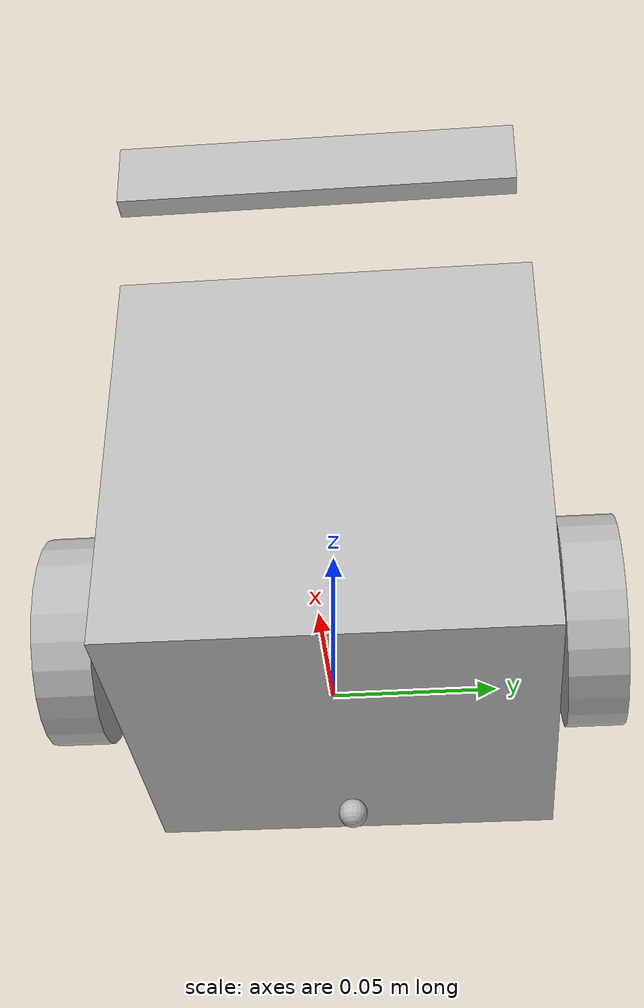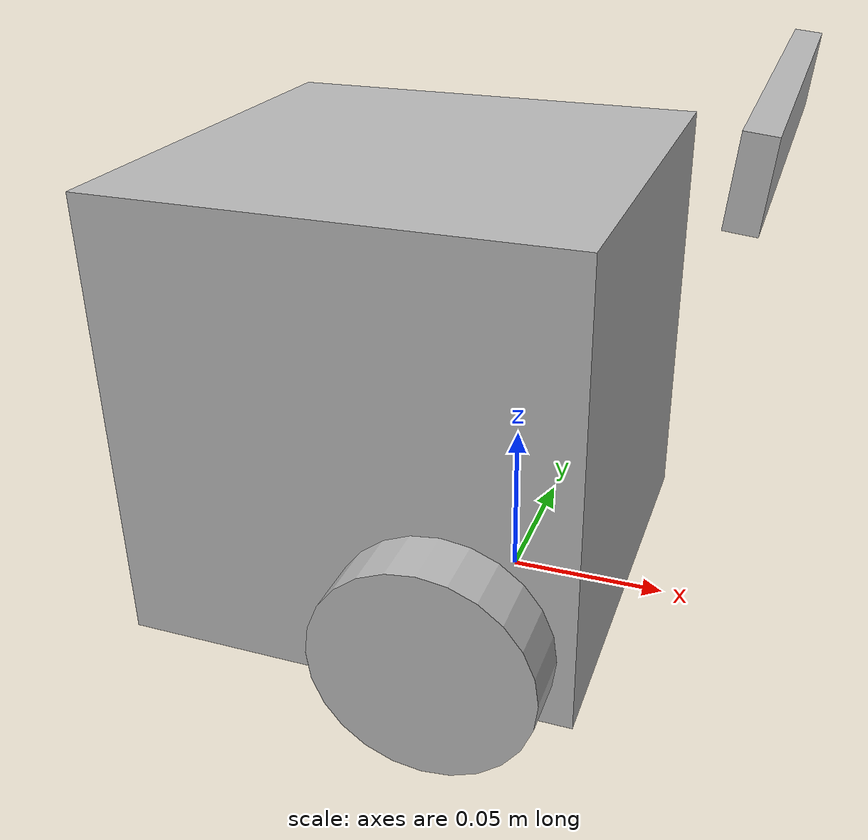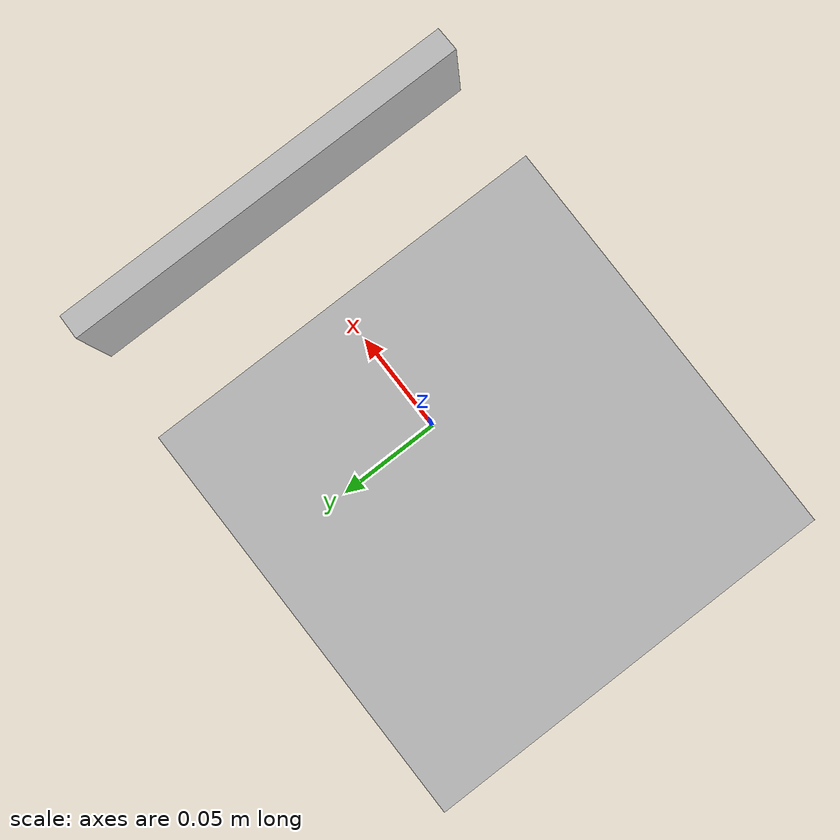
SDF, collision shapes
<?xml version="1.0" ?>
<sdf version="1.5">
  <model name="turtlebot3_burger">
    <pose>0.0 0.0 0.0 0.0 0.0 0.0</pose>

    <link name="base_footprint"/>

    <link name="base_link">

      <inertial>
        <pose>-0.032 0 0.070 0 0 0</pose>
        <inertia>
          <ixx>0.001</ixx>
          <ixy>0.000</ixy>
          <ixz>0.000</ixz>
          <iyy>0.001</iyy>
          <iyz>0.000</iyz>
          <izz>0.001</izz>
        </inertia>
        <mass>1.0</mass>
      </inertial>

      <collision name="base_collision">
        <pose>-0.032 0 0.070 0 0 0</pose>
        <geometry>
          <box>
            <size>0.140 0.140 0.140</size>
          </box>
        </geometry>
      </collision>

      <visual name="base_visual">
        <pose>-0.032 0 0 0 0 0</pose>
        <geometry>
          <mesh>
            <uri>model://turtlebot3_burger/meshes/burger_base.dae</uri>
            <scale>0.001 0.001 0.001</scale>
          </mesh>
        </geometry>
      </visual>
    </link>
    <joint name="camera_joint" type="fixed">
      <parent>base_link</parent>
      <child>camera_link</child>
      <pose>0.073 -0.011 0.084 0 0 0</pose>
      <axis>
        <xyz>0 0 1</xyz>
      </axis>
    </joint>

    <joint name="camera_rgb_joint" type="fixed">
      <parent>camera_link</parent>
      <child>camera_rgb_frame</child>
      <pose>0.003 0.011 0.009 0 0 0</pose>
      <axis>
        <xyz>0 0 1</xyz>
      </axis>
    </joint>

    <link name="camera_link"/>
    <link name="camera_rgb_frame">
      <inertial>
        <pose>0.069 -0.047 0.107 0 0 0</pose>
        <inertia>
          <ixx>0.001</ixx>
          <ixy>0.000</ixy>
          <ixz>0.000</ixz>
          <iyy>0.001</iyy>
          <iyz>0.000</iyz>
          <izz>0.001</izz>
        </inertia>
        <mass>0.035</mass>
      </inertial>

      <collision name="collision">
        <pose>0 0.047 0 0 0 0</pose>
        <geometry>
          <box>
            <size>0.008 0.130 0.022</size>
          </box>
        </geometry>
      </collision>
      <pose>0.069 -0.047 0.157 0 0.1 0</pose>
      <sensor name="camera" type="camera">
        <always_on>true</always_on>
        <visualize>true</visualize>
        <update_rate>30</update_rate>
        <camera name="intel_realsense_r200">
          <horizontal_fov>1.02974</horizontal_fov>
          <image>
            <width>1920</width>
            <height>1080</height>
            <format>R8G8B8</format>
          </image>
          <clip>
            <near>0.02</near>
            <far>300</far>
          </clip>
          <noise>
            <type>gaussian</type>
            <mean>0.0</mean>
            <stddev>0.007</stddev>
          </noise>
        </camera>
          <plugin name="camera_driver" filename="libgazebo_ros_camera.so">
            <ros>
            </ros>
          </plugin>
      </sensor>
    </link>

    <link name="wheel_left_link">

      <inertial>
        <pose>0 0.08 0.023 -1.57 0 0</pose>
        <inertia>
          <ixx>0.001</ixx>
          <ixy>0.000</ixy>
          <ixz>0.000</ixz>
          <iyy>0.001</iyy>
          <iyz>0.000</iyz>
          <izz>0.001</izz>
        </inertia>
        <mass>0.1</mass>
      </inertial>

      <collision name="wheel_left_collision">
        <pose>0 0.08 0.023 -1.57 0 0</pose>
        <geometry>
          <cylinder>
            <radius>0.033</radius>
            <length>0.018</length>
          </cylinder>
        </geometry>
        <surface>
          <!-- This friction pamareter don't contain reliable data!! -->
          <friction>
            <ode>
              <mu>100000.0</mu>
              <mu2>100000.0</mu2>
              <fdir1>0 0 0</fdir1>
              <slip1>0.0</slip1>
              <slip2>0.0</slip2>
            </ode>
          </friction>
          <contact>
            <ode>
              <soft_cfm>0</soft_cfm>
              <soft_erp>0.2</soft_erp>
              <kp>1e+5</kp>
              <kd>1</kd>
              <max_vel>0.01</max_vel>
              <min_depth>0.001</min_depth>
            </ode>
          </contact>
        </surface>
      </collision>

      <visual name="wheel_left_visual">
        <pose>0 0.08 0.023 0 0 0</pose>
        <geometry>
          <mesh>
            <uri>model://turtlebot3_burger/meshes/left_tire.dae</uri>
            <scale>0.001 0.001 0.001</scale>
          </mesh>
        </geometry>
      </visual>
    </link>

    <link name="wheel_right_link">

      <inertial>
        <pose>0.0 -0.08 0.023 -1.57 0 0</pose>
        <inertia>
          <ixx>0.001</ixx>
          <ixy>0.000</ixy>
          <ixz>0.000</ixz>
          <iyy>0.001</iyy>
          <iyz>0.000</iyz>
          <izz>0.001</izz>
        </inertia>
        <mass>0.1</mass>
      </inertial>

      <collision name="wheel_right_collision">
        <pose>0.0 -0.08 0.023 -1.57 0 0</pose>
        <geometry>
          <cylinder>
            <radius>0.033</radius>
            <length>0.018</length>
          </cylinder>
        </geometry>
        <surface>
          <!-- This friction pamareter don't contain reliable data!! -->
          <friction>
            <ode>
              <mu>100000.0</mu>
              <mu2>100000.0</mu2>
              <fdir1>0 0 0</fdir1>
              <slip1>0.0</slip1>
              <slip2>0.0</slip2>
            </ode>
          </friction>
          <contact>
            <ode>
              <soft_cfm>0</soft_cfm>
              <soft_erp>0.2</soft_erp>
              <kp>1e+5</kp>
              <kd>1</kd>
              <max_vel>0.01</max_vel>
              <min_depth>0.001</min_depth>
            </ode>
          </contact>
        </surface>
      </collision>

      <visual name="wheel_right_visual">
        <pose>0.0 -0.08 0.023 0 0 0</pose>
        <geometry>
          <mesh>
            <uri>model://turtlebot3_burger/meshes/right_tire.dae</uri>
            <scale>0.001 0.001 0.001</scale>
          </mesh>
        </geometry>
      </visual>
    </link>

    <link name='caster_back_link'>
      <pose>-0.081 0 -0.004 0 0 0</pose>
      <inertial>
        <mass>0.001</mass>
        <inertia>
          <ixx>0.00001</ixx>
          <ixy>0.000</ixy>
          <ixz>0.000</ixz>
          <iyy>0.00001</iyy>
          <iyz>0.000</iyz>
          <izz>0.00001</izz>
        </inertia>
      </inertial>
      <collision name='collision'>
        <geometry>
          <sphere>
            <radius>0.005000</radius>
          </sphere>
        </geometry>
        <surface>
          <contact>
            <ode>
              <soft_cfm>0</soft_cfm>
              <soft_erp>0.2</soft_erp>
              <kp>1e+5</kp>
              <kd>1</kd>
              <max_vel>0.01</max_vel>
              <min_depth>0.001</min_depth>
            </ode>
          </contact>
        </surface>
      </collision>
    </link>

    <joint name="base_joint" type="fixed">
      <parent>base_footprint</parent>
      <child>base_link</child>
      <pose>0.0 0.0 0.010 0 0 0</pose>
    </joint>

    <joint name="wheel_left_joint" type="revolute">
      <parent>base_link</parent>
      <child>wheel_left_link</child>
      <pose>0.0 0.08 0.023 -1.57 0 0</pose>
      <axis>
        <xyz>0 0 1</xyz>
      </axis>
    </joint>

    <joint name="wheel_right_joint" type="revolute">
      <parent>base_link</parent>
      <child>wheel_right_link</child>
      <pose>0.0 -0.08 0.023 -1.57 0 0</pose>
      <axis>
        <xyz>0 0 1</xyz>
      </axis>
    </joint>

    <joint name='caster_back_joint' type='ball'>
      <parent>base_link</parent>
      <child>caster_back_link</child>
    </joint>

    <plugin name="turtlebot3_diff_drive" filename="libgazebo_ros_diff_drive.so">

      <ros>
      </ros>

      <update_rate>30</update_rate>

      <!-- wheels -->
      <left_joint>wheel_left_joint</left_joint>
      <right_joint>wheel_right_joint</right_joint>

      <!-- kinematics -->
      <wheel_separation>0.160</wheel_separation>
      <wheel_diameter>0.066</wheel_diameter>

      <!-- limits -->
      <max_wheel_torque>20</max_wheel_torque>
      <max_wheel_acceleration>1.0</max_wheel_acceleration>

      <command_topic>cmd_vel</command_topic>

      <!-- output -->
      <publish_odom>true</publish_odom>
      <publish_odom_tf>true</publish_odom_tf>
      <publish_wheel_tf>false</publish_wheel_tf>

      <odometry_topic>odom</odometry_topic>
      <odometry_frame>odom</odometry_frame>
      <robot_base_frame>base_footprint</robot_base_frame>

    </plugin>
  </model>
</sdf>
